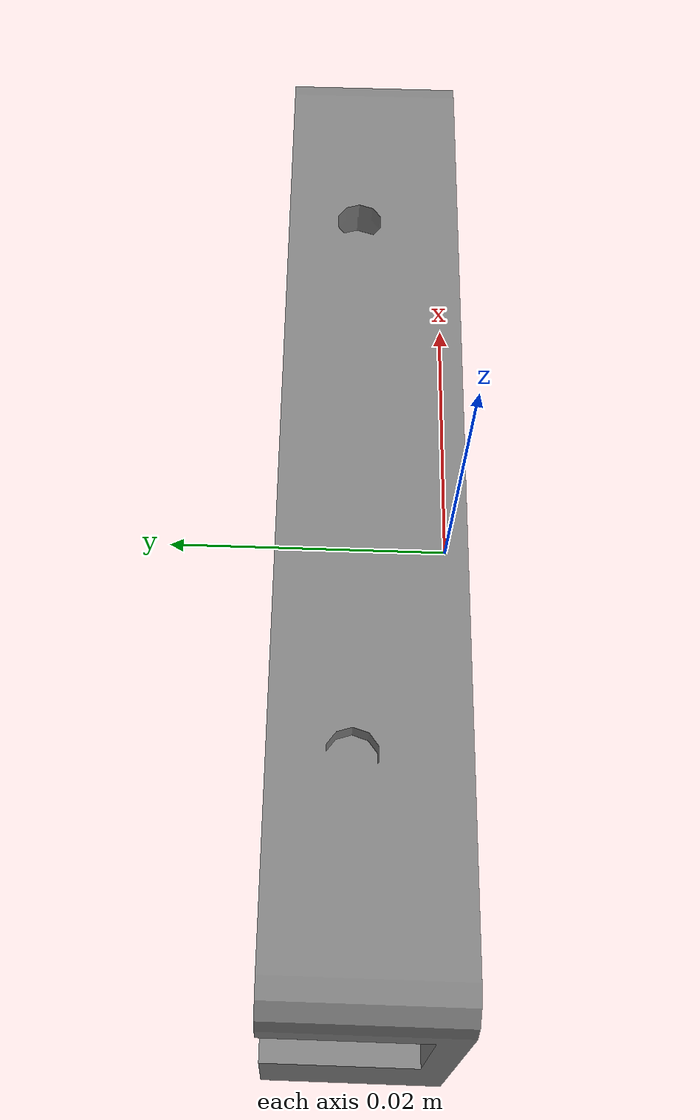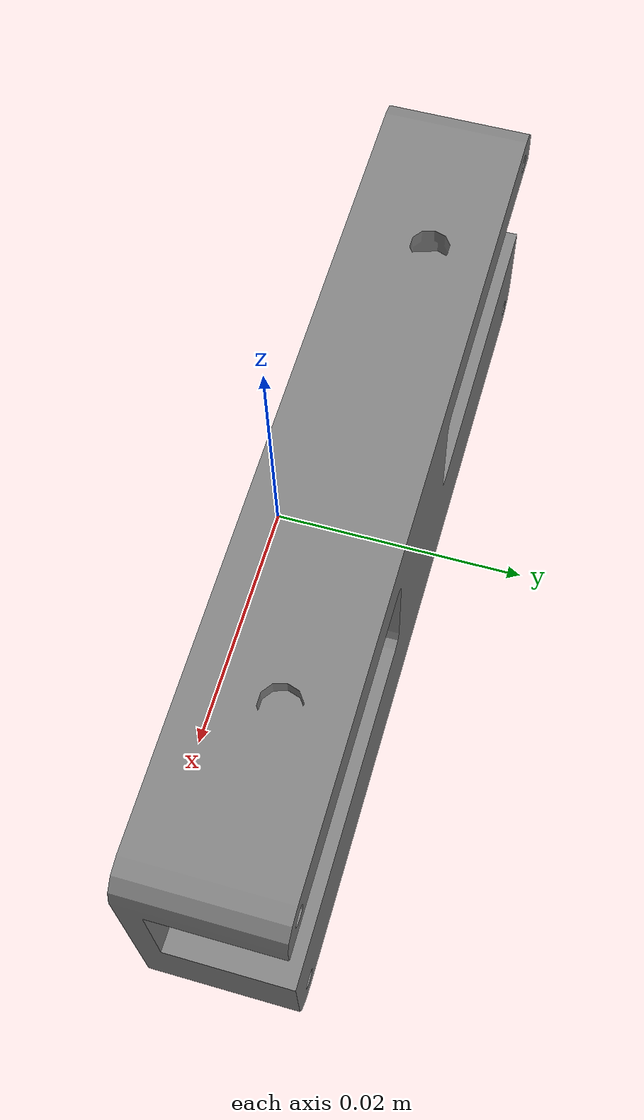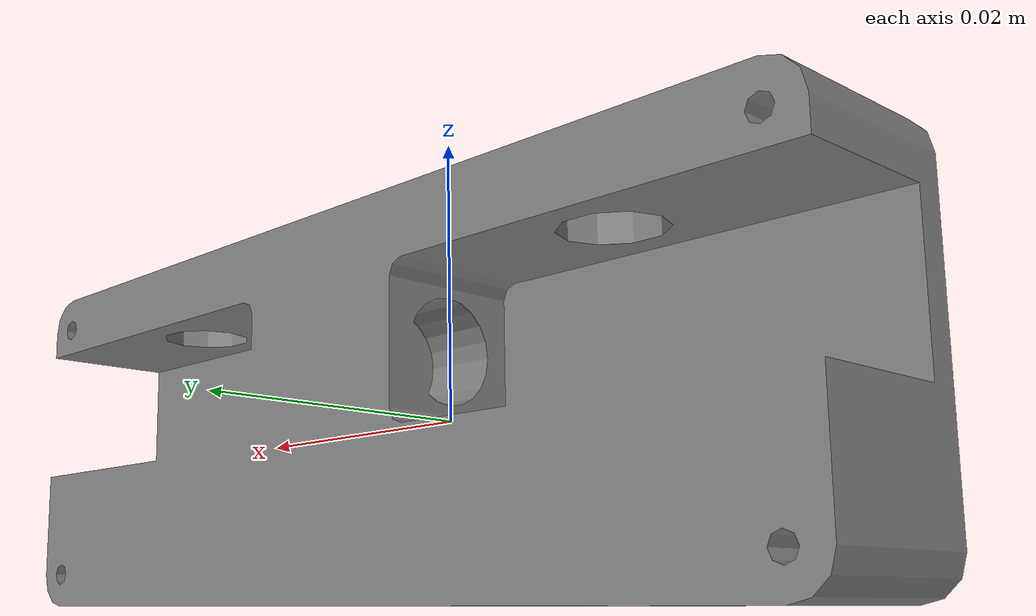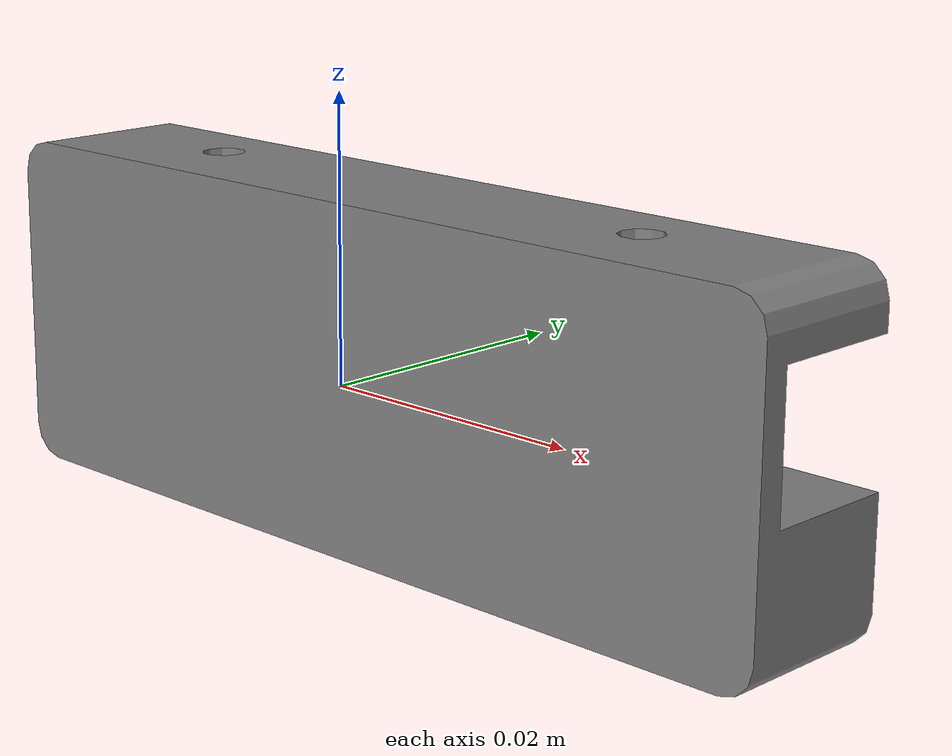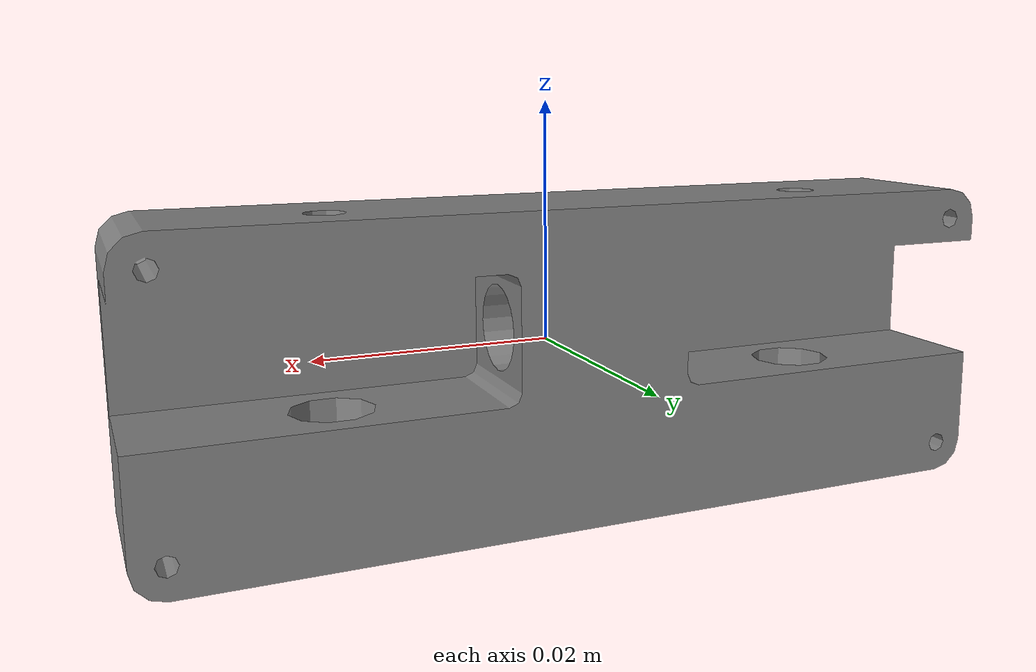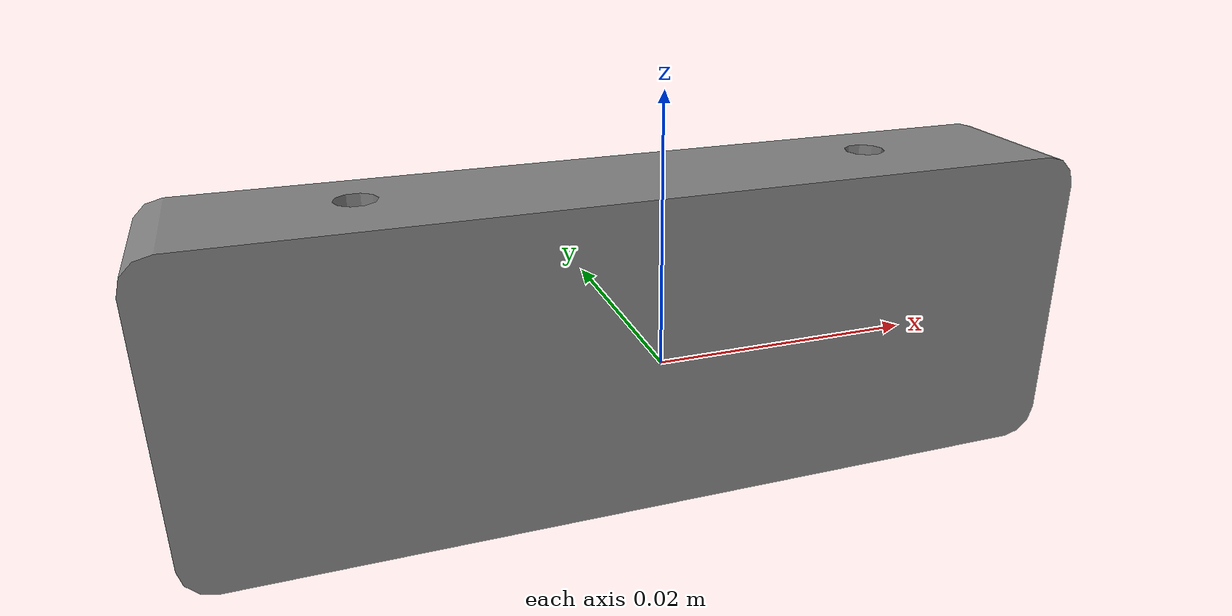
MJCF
<mujoco model="csm_latch_housing">
  <default>
    <default class="visual">
      <geom group="2" type="mesh" contype="0" conaffinity="0"/>
    </default>
    <default class="collision">
      <geom group="3" type="mesh"/>
    </default>
  </default>
  <asset>
    <material name="mtl_csm_latch_housing" specular="0.20000000000000004" shininess="1.0" rgba="0.50196078 0.50196078 0.50196078 1.0"/>
    <mesh file="csm_latch_housing.obj"/>
  </asset>
  <worldbody>
    <body name="csm_latch_housing">
      <geom material="mtl_csm_latch_housing" mesh="csm_latch_housing" class="visual"/>
      <geom mesh="csm_latch_housing" class="collision"/>
    </body>
  </worldbody>
</mujoco>
